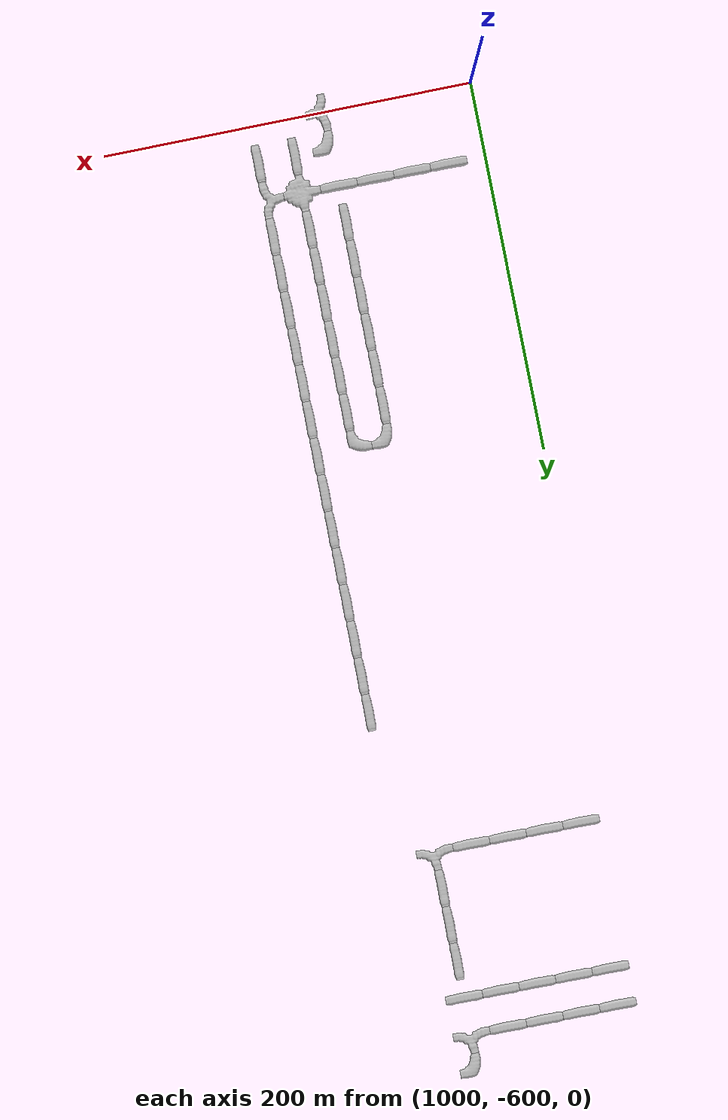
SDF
<sdf version="1.6">
 <world name="cave_32000_32">
  <include>
   <static>true</static>
   <name>cave_51_-5</name>
   <pose>1020 -100 0 0 0 1.5707963267948966</pose>
   <uri>model://cave_straight_20m</uri>
  </include>
  <include>
   <static>true</static>
   <name>cave_52_-5</name>
   <pose>1040 -100 0 0 0 1.5707963267948966</pose>
   <uri>model://cave_straight_20m</uri>
  </include>
  <include>
   <static>true</static>
   <name>cave_53_-5</name>
   <pose>1060 -100 0 0 0 1.5707963267948966</pose>
   <uri>model://cave_straight_20m</uri>
  </include>
  <include>
   <static>true</static>
   <name>cave_54_-5</name>
   <pose>1080 -100 0 0 0 1.5707963267948966</pose>
   <uri>model://cave_straight_20m</uri>
  </include>
  <include>
   <static>true</static>
   <name>cave_55_-5</name>
   <pose>1100 -100 0 0 0 0.0</pose>
   <uri>model://cave_3way_20m</uri>
  </include>
  <include>
   <static>true</static>
   <name>cave_56_-14</name>
   <pose>1120 -280 0 0 0 0.0</pose>
   <uri>model://cave_straight_20m</uri>
  </include>
  <include>
   <static>true</static>
   <name>cave_56_-15</name>
   <pose>1120 -300 0 0 0 0.0</pose>
   <uri>model://cave_straight_20m</uri>
  </include>
  <include>
   <static>true</static>
   <name>cave_56_-16</name>
   <pose>1120 -320 0 0 0 0.0</pose>
   <uri>model://cave_straight_20m</uri>
  </include>
  <include>
   <static>true</static>
   <name>cave_56_-17</name>
   <pose>1120 -340 0 0 0 0.0</pose>
   <uri>model://cave_straight_20m</uri>
  </include>
  <include>
   <static>true</static>
   <name>cave_56_-18</name>
   <pose>1120 -360 0 0 0 0.0</pose>
   <uri>model://cave_straight_20m</uri>
  </include>
  <include>
   <static>true</static>
   <name>cave_56_-19</name>
   <pose>1120 -380 0 0 0 0.0</pose>
   <uri>model://cave_straight_20m</uri>
  </include>
  <include>
   <static>true</static>
   <name>cave_56_-20</name>
   <pose>1120 -400 0 0 0 0.0</pose>
   <uri>model://cave_straight_20m</uri>
  </include>
  <include>
   <static>true</static>
   <name>cave_56_-21</name>
   <pose>1120 -420 0 0 0 0.0</pose>
   <uri>model://cave_straight_20m</uri>
  </include>
  <include>
   <static>true</static>
   <name>cave_56_-22</name>
   <pose>1120 -440 0 0 0 0.0</pose>
   <uri>model://cave_straight_20m</uri>
  </include>
  <include>
   <static>true</static>
   <name>cave_56_-23</name>
   <pose>1120 -460 0 0 0 0.0</pose>
   <uri>model://cave_straight_20m</uri>
  </include>
  <include>
   <static>true</static>
   <name>cave_56_-24</name>
   <pose>1120 -480 0 0 0 0.0</pose>
   <uri>model://cave_straight_20m</uri>
  </include>
  <include>
   <static>true</static>
   <name>cave_56_-25</name>
   <pose>1120 -500 0 0 0 0.0</pose>
   <uri>model://cave_straight_20m</uri>
  </include>
  <include>
   <static>true</static>
   <name>cave_56_-26</name>
   <pose>1120 -520 0 0 0 0.0</pose>
   <uri>model://cave_straight_20m</uri>
  </include>
  <include>
   <static>true</static>
   <name>cave_56_-27</name>
   <pose>1120 -540 0 0 0 0.0</pose>
   <uri>model://cave_straight_20m</uri>
  </include>
  <include>
   <static>true</static>
   <name>cave_56_-28</name>
   <pose>1120 -560 0 0 0 1.5707963267948966</pose>
   <uri>model://cave_3way_20m</uri>
  </include>
  <include>
   <static>true</static>
   <name>cave_56_-29</name>
   <pose>1120 -580 0 0 0 0.0</pose>
   <uri>model://cave_straight_20m</uri>
  </include>
  <include>
   <static>true</static>
   <name>cave_55_-28</name>
   <pose>1100 -560 0 0 0 -1.5707963267948966</pose>
   <uri>model://cave_4way_20m</uri>
  </include>
  <include>
   <static>true</static>
   <name>cave_55_-29</name>
   <pose>1100 -580 0 0 0 0.0</pose>
   <uri>model://cave_straight_20m</uri>
  </include>
  <include>
   <static>true</static>
   <name>cave_54_-30</name>
   <pose>1080 -600 0 0 0 -1.5707963267948966</pose>
   <uri>model://cave_3way_20m</uri>
  </include>
  <include>
   <static>true</static>
   <name>cave_54_-29</name>
   <pose>1080 -580 0 0 0 -1.5707963267948966</pose>
   <uri>model://cave_L_20m</uri>
  </include>
  <include>
   <static>true</static>
   <name>cave_54_-28</name>
   <pose>1080 -560 0 0 0 1.5707963267948966</pose>
   <uri>model://cave_straight_20m</uri>
  </include>
  <include>
   <static>true</static>
   <name>cave_53_-28</name>
   <pose>1060 -560 0 0 0 1.5707963267948966</pose>
   <uri>model://cave_straight_20m</uri>
  </include>
  <include>
   <static>true</static>
   <name>cave_52_-28</name>
   <pose>1040 -560 0 0 0 1.5707963267948966</pose>
   <uri>model://cave_straight_20m</uri>
  </include>
  <include>
   <static>true</static>
   <name>cave_51_-28</name>
   <pose>1020 -560 0 0 0 1.5707963267948966</pose>
   <uri>model://cave_straight_20m</uri>
  </include>
  <include>
   <static>true</static>
   <name>cave_55_-27</name>
   <pose>1100 -540 0 0 0 0.0</pose>
   <uri>model://cave_straight_20m</uri>
  </include>
  <include>
   <static>true</static>
   <name>cave_55_-26</name>
   <pose>1100 -520 0 0 0 0.0</pose>
   <uri>model://cave_straight_20m</uri>
  </include>
  <include>
   <static>true</static>
   <name>cave_55_-25</name>
   <pose>1100 -500 0 0 0 0.0</pose>
   <uri>model://cave_straight_20m</uri>
  </include>
  <include>
   <static>true</static>
   <name>cave_55_-24</name>
   <pose>1100 -480 0 0 0 0.0</pose>
   <uri>model://cave_straight_20m</uri>
  </include>
  <include>
   <static>true</static>
   <name>cave_55_-23</name>
   <pose>1100 -460 0 0 0 0.0</pose>
   <uri>model://cave_straight_20m</uri>
  </include>
  <include>
   <static>true</static>
   <name>cave_55_-22</name>
   <pose>1100 -440 0 0 0 0.0</pose>
   <uri>model://cave_straight_20m</uri>
  </include>
  <include>
   <static>true</static>
   <name>cave_55_-21</name>
   <pose>1100 -420 0 0 0 3.141592653589793</pose>
   <uri>model://cave_L_20m</uri>
  </include>
  <include>
   <static>true</static>
   <name>cave_54_-21</name>
   <pose>1080 -420 0 0 0 -1.5707963267948966</pose>
   <uri>model://cave_L_20m</uri>
  </include>
  <include>
   <static>true</static>
   <name>cave_54_-22</name>
   <pose>1080 -440 0 0 0 0.0</pose>
   <uri>model://cave_straight_20m</uri>
  </include>
  <include>
   <static>true</static>
   <name>cave_54_-23</name>
   <pose>1080 -460 0 0 0 0.0</pose>
   <uri>model://cave_straight_20m</uri>
  </include>
  <include>
   <static>true</static>
   <name>cave_54_-24</name>
   <pose>1080 -480 0 0 0 0.0</pose>
   <uri>model://cave_straight_20m</uri>
  </include>
  <include>
   <static>true</static>
   <name>cave_54_-25</name>
   <pose>1080 -500 0 0 0 0.0</pose>
   <uri>model://cave_straight_20m</uri>
  </include>
  <include>
   <static>true</static>
   <name>cave_54_-26</name>
   <pose>1080 -520 0 0 0 0.0</pose>
   <uri>model://cave_straight_20m</uri>
  </include>
  <include>
   <static>true</static>
   <name>cave_54_-27</name>
   <pose>1080 -540 0 0 0 0.0</pose>
   <uri>model://cave_straight_20m</uri>
  </include>
  <include>
   <static>true</static>
   <name>cave_55_-10</name>
   <pose>1100 -200 0 0 0 0.0</pose>
   <uri>model://cave_3way_20m</uri>
  </include>
  <include>
   <static>true</static>
   <name>cave_54_-10</name>
   <pose>1080 -200 0 0 0 1.5707963267948966</pose>
   <uri>model://cave_straight_20m</uri>
  </include>
  <include>
   <static>true</static>
   <name>cave_53_-10</name>
   <pose>1060 -200 0 0 0 1.5707963267948966</pose>
   <uri>model://cave_straight_20m</uri>
  </include>
  <include>
   <static>true</static>
   <name>cave_52_-10</name>
   <pose>1040 -200 0 0 0 1.5707963267948966</pose>
   <uri>model://cave_straight_20m</uri>
  </include>
  <include>
   <static>true</static>
   <name>cave_51_-10</name>
   <pose>1020 -200 0 0 0 1.5707963267948966</pose>
   <uri>model://cave_straight_20m</uri>
  </include>
  <include>
   <static>true</static>
   <name>cave_55_-9</name>
   <pose>1100 -180 0 0 0 0.0</pose>
   <uri>model://cave_straight_20m</uri>
  </include>
  <include>
   <static>true</static>
   <name>cave_55_-8</name>
   <pose>1100 -160 0 0 0 0.0</pose>
   <uri>model://cave_straight_20m</uri>
  </include>
  <include>
   <static>true</static>
   <name>cave_55_-7</name>
   <pose>1100 -140 0 0 0 0.0</pose>
   <uri>model://cave_straight_20m</uri>
  </include>
  <include>
   <static>true</static>
   <name>cave_55_-6</name>
   <pose>1100 -120 0 0 0 1.5707963267948966</pose>
   <uri>model://cave_straight_20m</uri>
  </include>
  <include>
   <static>true</static>
   <name>cave_54_-6</name>
   <pose>1080 -120 0 0 0 1.5707963267948966</pose>
   <uri>model://cave_straight_20m</uri>
  </include>
  <include>
   <static>true</static>
   <name>cave_53_-6</name>
   <pose>1060 -120 0 0 0 1.5707963267948966</pose>
   <uri>model://cave_straight_20m</uri>
  </include>
  <include>
   <static>true</static>
   <name>cave_52_-6</name>
   <pose>1040 -120 0 0 0 1.5707963267948966</pose>
   <uri>model://cave_straight_20m</uri>
  </include>
  <include>
   <static>true</static>
   <name>cave_51_-6</name>
   <pose>1020 -120 0 0 0 1.5707963267948966</pose>
   <uri>model://cave_straight_20m</uri>
  </include>
  <include>
   <static>true</static>
   <name>cave_55_-4</name>
   <pose>1100 -80 0 0 0 -1.5707963267948966</pose>
   <uri>model://cave_L_20m</uri>
  </include>
 </world>
</sdf>
